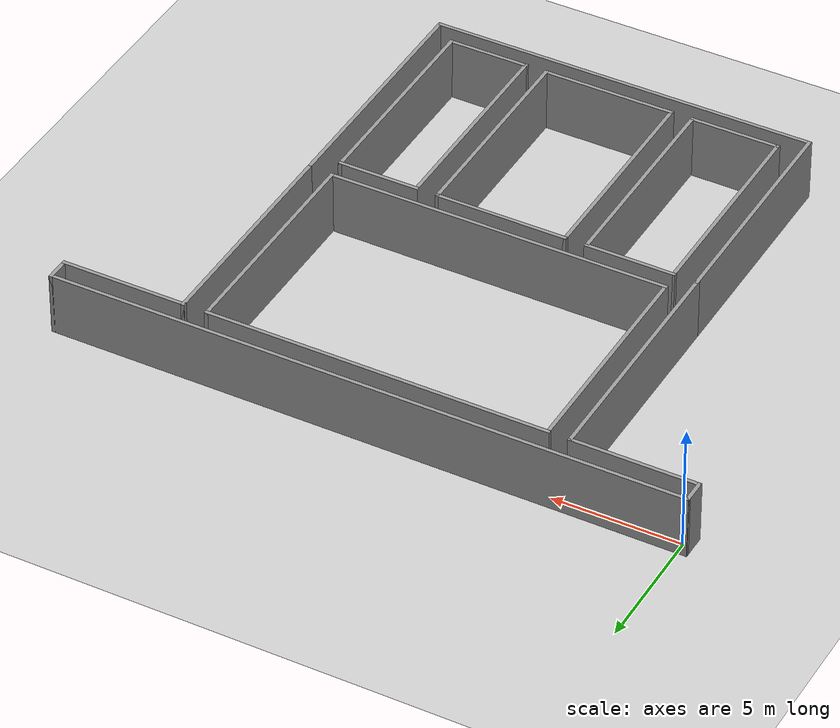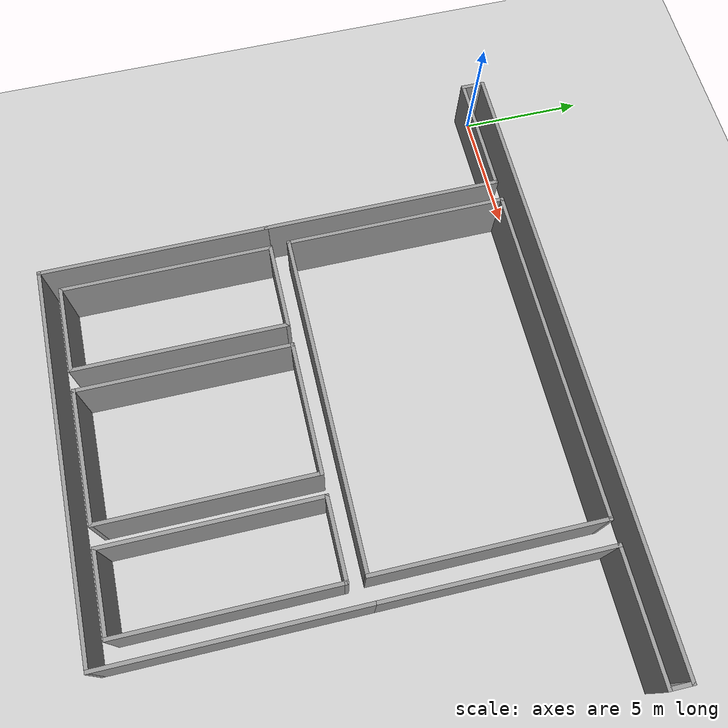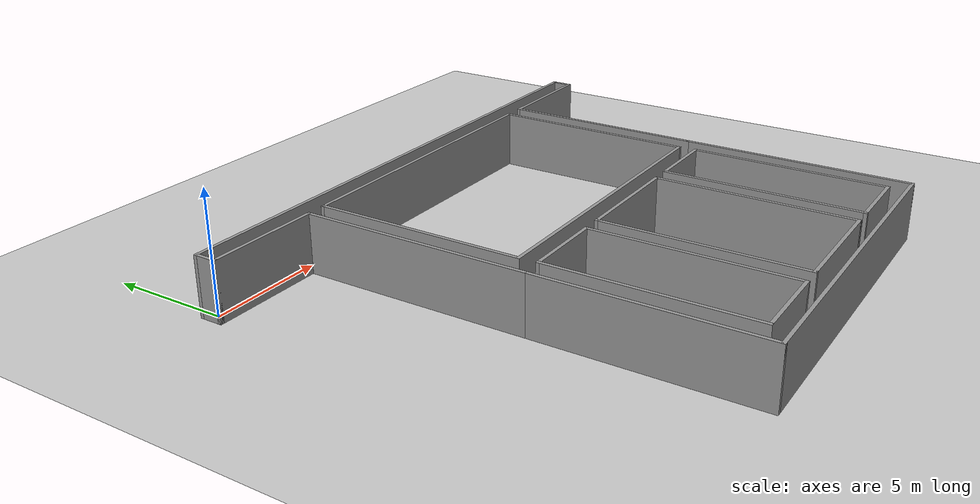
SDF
<sdf version="1.4">
  <world name="default">

    <scene>
      <ambient>0.4 0.4 0.4 1</ambient>
      <background>0.7 0.7 0.7 1</background>
      <shadows>true</shadows>
    </scene>

    <!-- A global light source -->
    <include>
      <uri>model://sun</uri>
    </include>

    <!-- A ground plane -->
    <include>
      <uri>model://ground_plane</uri>
    </include>

    <physics type="ode">
      <real_time_update_rate>1000.0</real_time_update_rate>
      <max_step_size>0.001</max_step_size>
      <real_time_factor>1</real_time_factor>
      <ode>
        <solver>
          <type>quick</type>
          <iters>150</iters>
          <precon_iters>0</precon_iters>
          <sor>1.400000</sor>
          <use_dynamic_moi_rescaling>1</use_dynamic_moi_rescaling>
        </solver>
        <constraints>
          <cfm>0.00001</cfm>
          <erp>0.2</erp>
          <contact_max_correcting_vel>2000.000000</contact_max_correcting_vel>
          <contact_surface_layer>0.01000</contact_surface_layer>
        </constraints>
      </ode>
    </physics>

  <model name='tip2'>
    <pose frame=''>12.105 -9.375 0 0 -0 0</pose>
    <link name='Wall_0'>
      <collision name='Wall_0_Collision'>
        <geometry>
          <box>
            <size>1 0.15 2.5</size>
          </box>
        </geometry>
        <pose frame=''>0 0 1.25 0 -0 0</pose>
      </collision>
      <visual name='Wall_0_Visual'>
        <pose frame=''>0 0 1.25 0 -0 0</pose>
        <geometry>
          <box>
            <size>1 0.15 2.5</size>
          </box>
        </geometry>
        <material>
          <script>
            <uri>file://media/materials/scripts/gazebo.material</uri>
            <name>Gazebo/Grey</name>
          </script>
          <ambient>1 1 1 1</ambient>
        </material>
        <meta>
          <layer>0</layer>
        </meta>
      </visual>
      <pose frame=''>-12.425 9.35 0 0 -0 -1.5708</pose>
    </link>
    <link name='Wall_11'>
      <collision name='Wall_11_Collision'>
        <geometry>
          <box>
            <size>9 0.15 2.5</size>
          </box>
        </geometry>
        <pose frame=''>0 0 1.25 0 -0 0</pose>
      </collision>
      <visual name='Wall_11_Visual'>
        <pose frame=''>0 0 1.25 0 -0 0</pose>
        <geometry>
          <box>
            <size>9 0.15 2.5</size>
          </box>
        </geometry>
        <material>
          <script>
            <uri>file://media/materials/scripts/gazebo.material</uri>
            <name>Gazebo/Grey</name>
          </script>
          <ambient>1 1 1 1</ambient>
        </material>
        <meta>
          <layer>0</layer>
        </meta>
      </visual>
      <pose frame=''>-6.725 4.5 0 0 -0 -1.5708</pose>
    </link>
    <link name='Wall_16'>
      <collision name='Wall_16_Collision'>
        <geometry>
          <box>
            <size>13.5 0.15 2.5</size>
          </box>
        </geometry>
        <pose frame=''>0 0 1.25 0 -0 0</pose>
      </collision>
      <visual name='Wall_16_Visual'>
        <pose frame=''>0 0 1.25 0 -0 0</pose>
        <geometry>
          <box>
            <size>13.5 0.15 2.5</size>
          </box>
        </geometry>
        <material>
          <script>
            <uri>file://media/materials/scripts/gazebo.material</uri>
            <name>Gazebo/Grey</name>
          </script>
          <ambient>1 1 1 1</ambient>
        </material>
        <meta>
          <layer>0</layer>
        </meta>
      </visual>
      <pose frame=''>-0.05 0.075 0 0 -0 0</pose>
    </link>
    <link name='Wall_17'>
      <collision name='Wall_17_Collision'>
        <geometry>
          <box>
            <size>9 0.15 2.5</size>
          </box>
        </geometry>
        <pose frame=''>0 0 1.25 0 -0 0</pose>
      </collision>
      <visual name='Wall_17_Visual'>
        <pose frame=''>0 0 1.25 0 -0 0</pose>
        <geometry>
          <box>
            <size>9 0.15 2.5</size>
          </box>
        </geometry>
        <material>
          <script>
            <uri>file://media/materials/scripts/gazebo.material</uri>
            <name>Gazebo/Grey</name>
          </script>
          <ambient>1 1 1 1</ambient>
        </material>
        <meta>
          <layer>0</layer>
        </meta>
      </visual>
      <pose frame=''>6.625 4.5 0 0 -0 1.5708</pose>
    </link>
    <link name='Wall_18'>
      <collision name='Wall_18_Collision'>
        <geometry>
          <box>
            <size>13.5 0.15 2.5</size>
          </box>
        </geometry>
        <pose frame=''>0 0 1.25 0 -0 0</pose>
      </collision>
      <visual name='Wall_18_Visual'>
        <pose frame=''>0 0 1.25 0 -0 0</pose>
        <geometry>
          <box>
            <size>13.5 0.15 2.5</size>
          </box>
        </geometry>
        <material>
          <script>
            <uri>file://media/materials/scripts/gazebo.material</uri>
            <name>Gazebo/Grey</name>
          </script>
          <ambient>1 1 1 1</ambient>
        </material>
        <meta>
          <layer>0</layer>
        </meta>
      </visual>
      <pose frame=''>-0.05 8.925 0 0 -0 3.14159</pose>
    </link>
    <link name='Wall_2'>
      <collision name='Wall_2_Collision'>
        <geometry>
          <box>
            <size>25 0.15 2.5</size>
          </box>
        </geometry>
        <pose frame=''>0 0 1.25 0 -0 0</pose>
      </collision>
      <visual name='Wall_2_Visual'>
        <pose frame=''>0 0 1.25 0 -0 0</pose>
        <geometry>
          <box>
            <size>25 0.15 2.5</size>
          </box>
        </geometry>
        <material>
          <script>
            <uri>file://media/materials/scripts/gazebo.material</uri>
            <name>Gazebo/Grey</name>
          </script>
          <ambient>1 1 1 1</ambient>
        </material>
        <meta>
          <layer>0</layer>
        </meta>
      </visual>
      <pose frame=''>-1e-06 9.775 0 0 -0 0</pose>
    </link>
    <link name='Wall_20'>
      <collision name='Wall_20_Collision'>
        <geometry>
          <box>
            <size>9.75 0.15 2.5</size>
          </box>
        </geometry>
        <pose frame=''>0 0 1.25 0 -0 0</pose>
      </collision>
      <visual name='Wall_20_Visual'>
        <pose frame=''>0 0 1.25 0 -0 0</pose>
        <geometry>
          <box>
            <size>9.75 0.15 2.5</size>
          </box>
        </geometry>
        <material>
          <script>
            <uri>file://media/materials/scripts/gazebo.material</uri>
            <name>Gazebo/Grey</name>
          </script>
          <ambient>1 1 1 1</ambient>
        </material>
        <meta>
          <layer>0</layer>
        </meta>
      </visual>
      <pose frame=''>-7.575 4.125 0 0 -0 -1.5708</pose>
    </link>
    <link name='Wall_26'>
      <collision name='Wall_26_Collision'>
        <geometry>
          <box>
            <size>8.5 0.15 2.5</size>
          </box>
        </geometry>
        <pose frame=''>0 0 1.25 0 -0 0</pose>
      </collision>
      <visual name='Wall_26_Visual'>
        <pose frame=''>0 0 1.25 0 -0 0</pose>
        <geometry>
          <box>
            <size>8.5 0.15 2.5</size>
          </box>
        </geometry>
        <material>
          <script>
            <uri>file://media/materials/scripts/gazebo.material</uri>
            <name>Gazebo/Grey</name>
          </script>
          <ambient>1 1 1 1</ambient>
        </material>
        <meta>
          <layer>0</layer>
        </meta>
      </visual>
      <pose frame=''>6.68728 -4.85484 0 0 -0 1.5708</pose>
    </link>
    <link name='Wall_3'>
      <collision name='Wall_3_Collision'>
        <geometry>
          <box>
            <size>1 0.15 2.5</size>
          </box>
        </geometry>
        <pose frame=''>0 0 1.25 0 -0 0</pose>
      </collision>
      <visual name='Wall_3_Visual'>
        <pose frame=''>0 0 1.25 0 -0 0</pose>
        <geometry>
          <box>
            <size>1 0.15 2.5</size>
          </box>
        </geometry>
        <material>
          <script>
            <uri>file://media/materials/scripts/gazebo.material</uri>
            <name>Gazebo/Grey</name>
          </script>
          <ambient>1 1 1 1</ambient>
        </material>
        <meta>
          <layer>0</layer>
        </meta>
      </visual>
      <pose frame=''>12.425 9.35 0 0 -0 -1.5708</pose>
    </link>
    <link name='Wall_32'>
      <collision name='Wall_32_Collision'>
        <geometry>
          <box>
            <size>9.25 0.15 2.5</size>
          </box>
        </geometry>
        <pose frame=''>0 0 1.25 0 -0 0</pose>
      </collision>
      <visual name='Wall_32_Visual'>
        <pose frame=''>0 0 1.25 0 -0 0</pose>
        <geometry>
          <box>
            <size>9.25 0.15 2.5</size>
          </box>
        </geometry>
        <material>
          <script>
            <uri>file://media/materials/scripts/gazebo.material</uri>
            <name>Gazebo/Grey</name>
          </script>
          <ambient>1 1 1 1</ambient>
        </material>
        <meta>
          <layer>0</layer>
        </meta>
      </visual>
      <pose frame=''>-7.575 -5.225 0 0 -0 -1.5708</pose>
    </link>
    <link name='Wall_35'>
      <collision name='Wall_35_Collision'>
        <geometry>
          <box>
            <size>10 0.15 2.5</size>
          </box>
        </geometry>
        <pose frame=''>0 0 1.25 0 -0 0</pose>
      </collision>
      <visual name='Wall_35_Visual'>
        <pose frame=''>0 0 1.25 0 -0 0</pose>
        <geometry>
          <box>
            <size>10 0.15 2.5</size>
          </box>
        </geometry>
        <material>
          <script>
            <uri>file://media/materials/scripts/gazebo.material</uri>
            <name>Gazebo/Grey</name>
          </script>
          <ambient>1 1 1 1</ambient>
        </material>
        <meta>
          <layer>0</layer>
        </meta>
      </visual>
      <pose frame=''>7.575 -4.85 0 0 -0 -1.5708</pose>
    </link>
    <link name='Wall_39'>
      <collision name='Wall_39_Collision'>
        <geometry>
          <box>
            <size>8.5 0.15 2.5</size>
          </box>
        </geometry>
        <pose frame=''>0 0 1.25 0 -0 0</pose>
      </collision>
      <visual name='Wall_39_Visual'>
        <pose frame=''>0 0 1.25 0 -0 0</pose>
        <geometry>
          <box>
            <size>8.5 0.15 2.5</size>
          </box>
        </geometry>
        <material>
          <script>
            <uri>file://media/materials/scripts/gazebo.material</uri>
            <name>Gazebo/Grey</name>
          </script>
          <ambient>1 1 1 1</ambient>
        </material>
        <meta>
          <layer>0</layer>
        </meta>
      </visual>
      <pose frame=''>-6.66272 -4.85484 0 0 -0 -1.5708</pose>
    </link>
    <link name='Wall_40'>
      <collision name='Wall_40_Collision'>
        <geometry>
          <box>
            <size>3.57215 0.15 2.5</size>
          </box>
        </geometry>
        <pose frame=''>0 0 1.25 0 -0 0</pose>
      </collision>
      <visual name='Wall_40_Visual'>
        <pose frame=''>0 0 1.25 0 -0 0</pose>
        <geometry>
          <box>
            <size>3.57215 0.15 2.5</size>
          </box>
        </geometry>
        <material>
          <script>
            <uri>file://media/materials/scripts/gazebo.material</uri>
            <name>Gazebo/Grey</name>
          </script>
          <ambient>1 1 1 1</ambient>
        </material>
        <meta>
          <layer>0</layer>
        </meta>
      </visual>
      <pose frame=''>-4.95164 -9.02984 0 0 -0 0</pose>
    </link>
    <link name='Wall_44'>
      <collision name='Wall_44_Collision'>
        <geometry>
          <box>
            <size>8.5 0.15 2.5</size>
          </box>
        </geometry>
        <pose frame=''>0 0 1.25 0 -0 0</pose>
      </collision>
      <visual name='Wall_44_Visual'>
        <pose frame=''>0 0 1.25 0 -0 0</pose>
        <geometry>
          <box>
            <size>8.5 0.15 2.5</size>
          </box>
        </geometry>
        <material>
          <script>
            <uri>file://media/materials/scripts/gazebo.material</uri>
            <name>Gazebo/Grey</name>
          </script>
          <ambient>1 1 1 1</ambient>
        </material>
        <meta>
          <layer>0</layer>
        </meta>
      </visual>
      <pose frame=''>-3.24057 -4.85484 0 0 -0 1.5708</pose>
    </link>
    <link name='Wall_49'>
      <collision name='Wall_49_Collision'>
        <geometry>
          <box>
            <size>8.5 0.15 2.5</size>
          </box>
        </geometry>
        <pose frame=''>0 0 1.25 0 -0 0</pose>
      </collision>
      <visual name='Wall_49_Visual'>
        <pose frame=''>0 0 1.25 0 -0 0</pose>
        <geometry>
          <box>
            <size>8.5 0.15 2.5</size>
          </box>
        </geometry>
        <material>
          <script>
            <uri>file://media/materials/scripts/gazebo.material</uri>
            <name>Gazebo/Grey</name>
          </script>
          <ambient>1 1 1 1</ambient>
        </material>
        <meta>
          <layer>0</layer>
        </meta>
      </visual>
      <pose frame=''>3.58728 -4.85484 0 0 -0 1.5708</pose>
    </link>
    <link name='Wall_5'>
      <collision name='Wall_5_Collision'>
        <geometry>
          <box>
            <size>5 0.15 2.5</size>
          </box>
        </geometry>
        <pose frame=''>0 0 1.25 0 -0 0</pose>
      </collision>
      <visual name='Wall_5_Visual'>
        <pose frame=''>0 0 1.25 0 -0 0</pose>
        <geometry>
          <box>
            <size>5 0.15 2.5</size>
          </box>
        </geometry>
        <material>
          <script>
            <uri>file://media/materials/scripts/gazebo.material</uri>
            <name>Gazebo/Grey</name>
          </script>
          <ambient>1 1 1 1</ambient>
        </material>
        <meta>
          <layer>0</layer>
        </meta>
      </visual>
      <pose frame=''>-10 8.925 0 0 -0 0</pose>
    </link>
    <link name='Wall_51'>
      <collision name='Wall_51_Collision'>
        <geometry>
          <box>
            <size>3.57215 0.15 2.5</size>
          </box>
        </geometry>
        <pose frame=''>0 0 1.25 0 -0 0</pose>
      </collision>
      <visual name='Wall_51_Visual'>
        <pose frame=''>0 0 1.25 0 -0 0</pose>
        <geometry>
          <box>
            <size>3.57215 0.15 2.5</size>
          </box>
        </geometry>
        <material>
          <script>
            <uri>file://media/materials/scripts/gazebo.material</uri>
            <name>Gazebo/Grey</name>
          </script>
          <ambient>1 1 1 1</ambient>
        </material>
        <meta>
          <layer>0</layer>
        </meta>
      </visual>
      <pose frame=''>-4.95164 -0.679842 0 0 -0 0</pose>
    </link>
    <link name='Wall_54'>
      <collision name='Wall_54_Collision'>
        <geometry>
          <box>
            <size>3.25 0.15 2.5</size>
          </box>
        </geometry>
        <pose frame=''>0 0 1.25 0 -0 0</pose>
      </collision>
      <visual name='Wall_54_Visual'>
        <pose frame=''>0 0 1.25 0 -0 0</pose>
        <geometry>
          <box>
            <size>3.25 0.15 2.5</size>
          </box>
        </geometry>
        <material>
          <script>
            <uri>file://media/materials/scripts/gazebo.material</uri>
            <name>Gazebo/Grey</name>
          </script>
          <ambient>1 1 1 1</ambient>
        </material>
        <meta>
          <layer>0</layer>
        </meta>
      </visual>
      <pose frame=''>5.13728 -0.679842 0 0 -0 3.14159</pose>
    </link>
    <link name='Wall_57'>
      <collision name='Wall_57_Collision'>
        <geometry>
          <box>
            <size>3.25 0.15 2.5</size>
          </box>
        </geometry>
        <pose frame=''>0 0 1.25 0 -0 0</pose>
      </collision>
      <visual name='Wall_57_Visual'>
        <pose frame=''>0 0 1.25 0 -0 0</pose>
        <geometry>
          <box>
            <size>3.25 0.15 2.5</size>
          </box>
        </geometry>
        <material>
          <script>
            <uri>file://media/materials/scripts/gazebo.material</uri>
            <name>Gazebo/Grey</name>
          </script>
          <ambient>1 1 1 1</ambient>
        </material>
        <meta>
          <layer>0</layer>
        </meta>
      </visual>
      <pose frame=''>5.13728 -9.02984 0 0 -0 3.14159</pose>
    </link>
    <link name='Wall_59'>
      <collision name='Wall_59_Collision'>
        <geometry>
          <box>
            <size>8.5 0.15 2.5</size>
          </box>
        </geometry>
        <pose frame=''>0 0 1.25 0 -0 0</pose>
      </collision>
      <visual name='Wall_59_Visual'>
        <pose frame=''>0 0 1.25 0 -0 0</pose>
        <geometry>
          <box>
            <size>8.5 0.15 2.5</size>
          </box>
        </geometry>
        <material>
          <script>
            <uri>file://media/materials/scripts/gazebo.material</uri>
            <name>Gazebo/Grey</name>
          </script>
          <ambient>1 1 1 1</ambient>
        </material>
        <meta>
          <layer>0</layer>
        </meta>
      </visual>
      <pose frame=''>-2.39057 -4.85484 0 0 -0 -1.5708</pose>
    </link>
    <link name='Wall_61'>
      <collision name='Wall_61_Collision'>
        <geometry>
          <box>
            <size>8.5 0.15 2.5</size>
          </box>
        </geometry>
        <pose frame=''>0 0 1.25 0 -0 0</pose>
      </collision>
      <visual name='Wall_61_Visual'>
        <pose frame=''>0 0 1.25 0 -0 0</pose>
        <geometry>
          <box>
            <size>8.5 0.15 2.5</size>
          </box>
        </geometry>
        <material>
          <script>
            <uri>file://media/materials/scripts/gazebo.material</uri>
            <name>Gazebo/Grey</name>
          </script>
          <ambient>1 1 1 1</ambient>
        </material>
        <meta>
          <layer>0</layer>
        </meta>
      </visual>
      <pose frame=''>2.73728 -4.85484 0 0 -0 -1.5708</pose>
    </link>
    <link name='Wall_64'>
      <collision name='Wall_64_Collision'>
        <geometry>
          <box>
            <size>5.27785 0.15 2.5</size>
          </box>
        </geometry>
        <pose frame=''>0 0 1.25 0 -0 0</pose>
      </collision>
      <visual name='Wall_64_Visual'>
        <pose frame=''>0 0 1.25 0 -0 0</pose>
        <geometry>
          <box>
            <size>5.27785 0.15 2.5</size>
          </box>
        </geometry>
        <material>
          <script>
            <uri>file://media/materials/scripts/gazebo.material</uri>
            <name>Gazebo/Grey</name>
          </script>
          <ambient>1 1 1 1</ambient>
        </material>
        <meta>
          <layer>0</layer>
        </meta>
      </visual>
      <pose frame=''>0.173358 -0.679842 0 0 -0 0</pose>
    </link>
    <link name='Wall_66'>
      <collision name='Wall_66_Collision'>
        <geometry>
          <box>
            <size>5.27785 0.15 2.5</size>
          </box>
        </geometry>
        <pose frame=''>0 0 1.25 0 -0 0</pose>
      </collision>
      <visual name='Wall_66_Visual'>
        <pose frame=''>0 0 1.25 0 -0 0</pose>
        <geometry>
          <box>
            <size>5.27785 0.15 2.5</size>
          </box>
        </geometry>
        <material>
          <script>
            <uri>file://media/materials/scripts/gazebo.material</uri>
            <name>Gazebo/Grey</name>
          </script>
          <ambient>1 1 1 1</ambient>
        </material>
        <meta>
          <layer>0</layer>
        </meta>
      </visual>
      <pose frame=''>0.173358 -9.02984 0 0 -0 0</pose>
    </link>
    <link name='Wall_68'>
      <collision name='Wall_68_Collision'>
        <geometry>
          <box>
            <size>15.3 0.15 2.5</size>
          </box>
        </geometry>
        <pose frame=''>0 0 1.25 0 -0 0</pose>
      </collision>
      <visual name='Wall_68_Visual'>
        <pose frame=''>0 0 1.25 0 -0 0</pose>
        <geometry>
          <box>
            <size>15.3 0.15 2.5</size>
          </box>
        </geometry>
        <material>
          <script>
            <uri>file://media/materials/scripts/gazebo.material</uri>
            <name>Gazebo/Grey</name>
          </script>
          <ambient>1 1 1 1</ambient>
        </material>
        <meta>
          <layer>0</layer>
        </meta>
      </visual>
      <pose frame=''>-1e-06 -9.775 0 0 -0 0</pose>
    </link>
    <link name='Wall_7'>
      <collision name='Wall_7_Collision'>
        <geometry>
          <box>
            <size>5 0.15 2.5</size>
          </box>
        </geometry>
        <pose frame=''>0 0 1.25 0 -0 0</pose>
      </collision>
      <visual name='Wall_7_Visual'>
        <pose frame=''>0 0 1.25 0 -0 0</pose>
        <geometry>
          <box>
            <size>5 0.15 2.5</size>
          </box>
        </geometry>
        <material>
          <script>
            <uri>file://media/materials/scripts/gazebo.material</uri>
            <name>Gazebo/Grey</name>
          </script>
          <ambient>1 1 1 1</ambient>
        </material>
        <meta>
          <layer>0</layer>
        </meta>
      </visual>
      <pose frame=''>10 8.925 0 0 -0 3.14159</pose>
    </link>
    <link name='Wall_8'>
      <collision name='Wall_8_Collision'>
        <geometry>
          <box>
            <size>9 0.15 2.5</size>
          </box>
        </geometry>
        <pose frame=''>0 0 1.25 0 -0 0</pose>
      </collision>
      <visual name='Wall_8_Visual'>
        <pose frame=''>0 0 1.25 0 -0 0</pose>
        <geometry>
          <box>
            <size>9 0.15 2.5</size>
          </box>
        </geometry>
        <material>
          <script>
            <uri>file://media/materials/scripts/gazebo.material</uri>
            <name>Gazebo/Grey</name>
          </script>
          <ambient>1 1 1 1</ambient>
        </material>
        <meta>
          <layer>0</layer>
        </meta>
      </visual>
      <pose frame=''>7.575 4.5 0 0 -0 -1.5708</pose>
    </link>
    <static>1</static>
  </model>

  </world>

</sdf>
